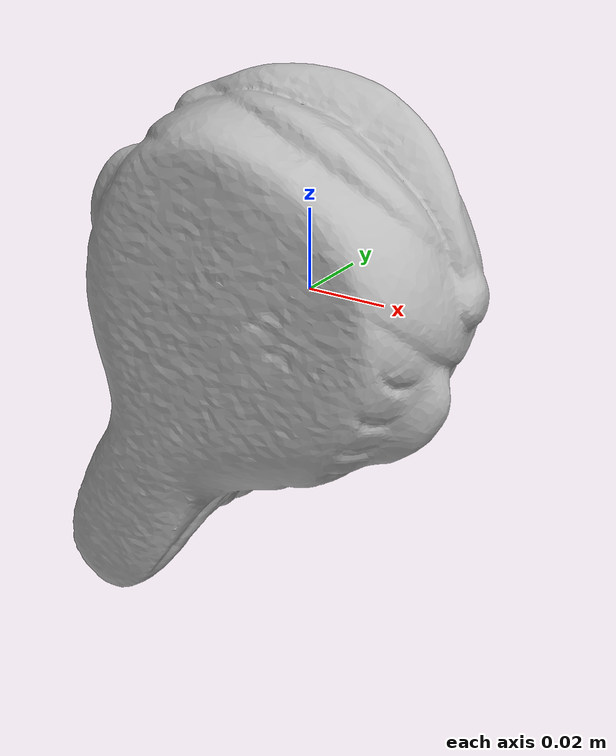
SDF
<?xml version='1.0'?>
<sdf version="1.4">
  <model name="Fish">
    <static>false</static>
    <link name="link">
      <inertial>
        <pose>-0.01339241880685972 0.0014422295135665065 -0.013144897994626972 -2.6528830559132515 -0.008126450413740768 1.516999774836089</pose>
        <mass>0.05499235159266257</mass>
        <inertia>
          <ixx>8.41033875152408e-05</ixx>
          <ixy>9.960426267982735e-22</ixy>
          <ixz>1.5877650558765146e-20</ixz>
          <iyy>8.090086030725575e-05</iyy>
          <iyz>7.63382840529515e-21</iyz>
          <izz>4.1692130890481084e-05</izz>
        </inertia>
      </inertial>
      <collision name="collision">
        <geometry>
          <mesh>
            <!-- Use a downsampled mesh for collisions -->
            <uri>model:///Fish/Fish_250_collision.obj</uri>
	        </mesh>
        </geometry>
        <surface>
      </surface>
      </collision>
      <visual name="visual">
        <geometry>
          <mesh>
            <uri>model:///Fish/Fish_25k_tex.obj</uri>
	        </mesh>
        </geometry>
        <material>
          <script>
            <uri>model:///Fish/Fish.material</uri>
            <name>Fish</name>
          </script>
        </material>
      </visual>
    </link>
  </model>
</sdf>
